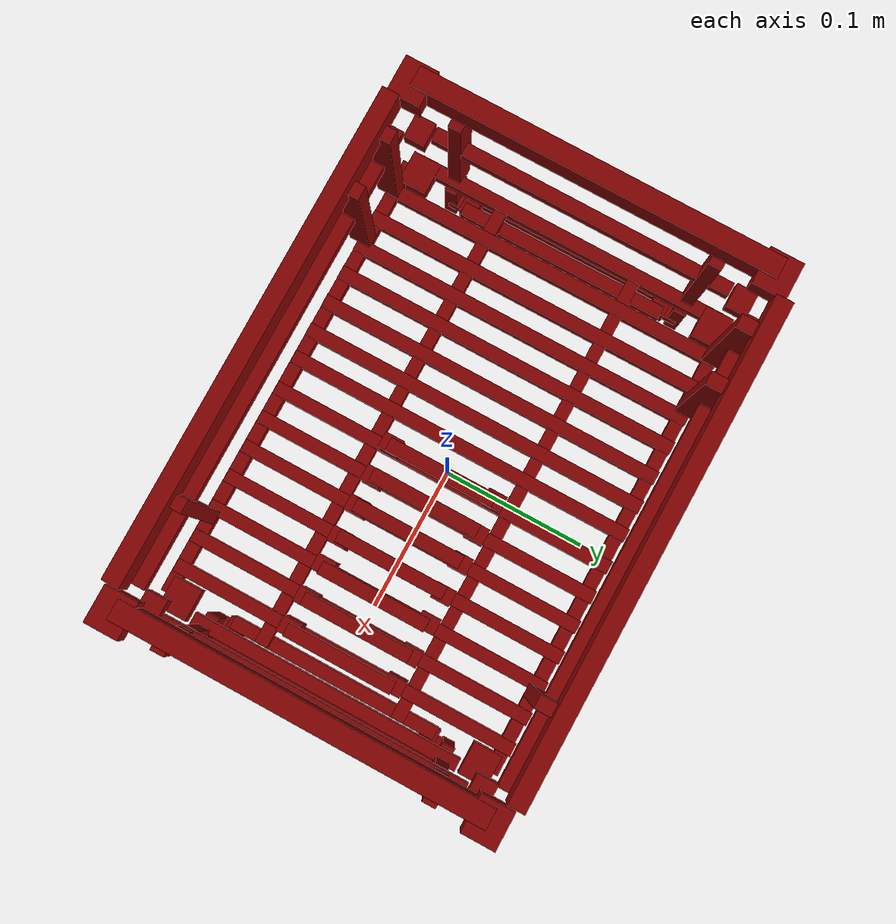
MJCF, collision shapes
<mujoco model="model">
  <compiler angle="radian"/>
  <asset>
    <mesh file="visuals/DishRack027.obj" name="vis"/>
    <texture file="visuals/T_BC001.png" name="material" type="2d"/>
    <material name="material" rgba="1 1 1 1.0" texture="material" shininess="0.5" specular="0.33333333333333337"/>
  </asset>
  <default>
    <default class="visual">
      <geom conaffinity="0" contype="0" group="1" type="mesh"/>
    </default>
    <default class="collision">
      <geom group="0" rgba="0.5 0 0 0.5"/>
    </default>
    <default class="region">
      <geom group="1" conaffinity="0" contype="0" rgba="0 1 0 0"/>
    </default>
  </default>
  <worldbody>
    <body>
      <body name="object">
        <geom mesh="vis" type="mesh" solimp="0.998 0.998 0.001" solref="0.001 1" density="100" friction="0.95 0.3 0.1" class="visual" material="material"/>
        <geom class="collision" type="box" pos="-0.13885708153247833 0.0 0.053375642746686935" size="0.004297505132853985 0.11860546469688416 0.004297505132853985" quat="1.0 0.0 0.0 0.0"/>
        <geom class="collision" type="box" pos="-0.11731316149234772 0.0 0.053375642746686935" size="0.004297505132853985 0.11860546469688416 0.004297505132853985" quat="1.0 0.0 0.0 0.0"/>
        <geom class="collision" type="box" pos="-0.09688358008861542 0.0 0.053375642746686935" size="0.004297505132853985 0.11860546469688416 0.004297505132853985" quat="1.0 0.0 0.0 0.0"/>
        <geom class="collision" type="box" pos="-0.07608254998922348 0.0 0.053375642746686935" size="0.004297505132853985 0.11860546469688416 0.004297505132853985" quat="1.0 0.0 0.0 0.0"/>
        <geom class="collision" type="box" pos="-0.054910074919462204 0.0 0.053375642746686935" size="0.004297505132853985 0.11860546469688416 0.004297505132853985" quat="1.0 0.0 0.0 0.0"/>
        <geom class="collision" type="box" pos="-0.034109048545360565 0.0 0.053375642746686935" size="0.004297505132853985 0.11860546469688416 0.004297505132853985" quat="1.0 0.0 0.0 0.0"/>
        <geom class="collision" type="box" pos="-0.014422360807657242 0.00037144694942981005 0.053375642746686935" size="0.004297505132853985 0.11860546469688416 0.004297505132853985" quat="1.0 0.0 0.0 0.0"/>
        <geom class="collision" type="box" pos="0.008235903456807137 0.00037144694942981005 0.053375642746686935" size="0.004297505132853985 0.11860546469688416 0.004297505132853985" quat="1.0 0.0 0.0 0.0"/>
        <geom class="collision" type="box" pos="0.029129793867468834 0.00037144694942981005 0.053375642746686935" size="0.004297505132853985 0.11860546469688416 0.004297505132853985" quat="1.0 0.0 0.0 0.0"/>
        <geom class="collision" type="box" pos="0.05002368241548538 0.00037144694942981005 0.053375642746686935" size="0.004297505132853985 0.11860546469688416 0.004297505132853985" quat="1.0 0.0 0.0 0.0"/>
        <geom class="collision" type="box" pos="0.07117552310228348 0.00037144694942981005 0.053375642746686935" size="0.004297505132853985 0.11860546469688416 0.004297505132853985" quat="1.0 0.0 0.0 0.0"/>
        <geom class="collision" type="box" pos="0.09258531033992767 0.00037144694942981005 0.053375642746686935" size="0.004297505132853985 0.11860546469688416 0.004297505132853985" quat="1.0 0.0 0.0 0.0"/>
        <geom class="collision" type="box" pos="0.11347919702529907 0.00037144694942981005 0.053375642746686935" size="0.004297505132853985 0.11860546469688416 0.004297505132853985" quat="1.0 0.0 0.0 0.0"/>
        <geom class="collision" type="box" pos="0.13463103771209717 0.00037144694942981005 0.053375642746686935" size="0.004297505132853985 0.11860546469688416 0.004297505132853985" quat="1.0 0.0 0.0 0.0"/>
        <geom class="collision" type="box" pos="-0.13885708153247833 0.11544574797153473 0.11156900972127914" size="0.004297505132853985 0.052834268659353256 0.006999239791184664" quat="0.7071067094802856 -0.7071068286895752 -1.5700929612083792e-16 -2.2148510003422914e-23"/>
        <geom class="collision" type="box" pos="-0.13885708153247833 -0.11678294837474823 0.11156900972127914" size="0.004297505132853985 0.052834268659353256 0.006999239791184664" quat="0.7071067094802856 -0.7071068286895752 -1.5700929612083792e-16 -2.2148510003422914e-23"/>
        <geom class="collision" type="box" pos="-0.10236229002475739 0.11544574797153473 0.11156900972127914" size="0.004297505132853985 0.052834268659353256 0.006999239791184664" quat="0.7071067094802856 -0.7071068286895752 -1.5700929612083792e-16 -2.2148510003422914e-23"/>
        <geom class="collision" type="box" pos="-0.10236229002475739 -0.11678294837474823 0.11156900972127914" size="0.004297505132853985 0.052834268659353256 0.006999239791184664" quat="0.7071067094802856 -0.7071068286895752 -1.5700929612083792e-16 -2.2148510003422914e-23"/>
        <geom class="collision" type="box" pos="0.09782211482524872 0.11544574797153473 0.11156900972127914" size="0.004297505132853985 0.052834268659353256 0.006999239791184664" quat="0.7071067094802856 -0.7071068286895752 -1.5700929612083792e-16 -2.2148510003422914e-23"/>
        <geom class="collision" type="box" pos="0.09782211482524872 -0.11678294837474823 0.11156900972127914" size="0.004297505132853985 0.052834268659353256 0.006999239791184664" quat="0.7071067094802856 -0.7071068286895752 -1.5700929612083792e-16 -2.2148510003422914e-23"/>
        <geom class="collision" type="box" pos="0.16670380532741547 -0.08373500406742096 0.10573248565196991" size="0.004297505132853985 0.05789348483085632 0.006999239791184664" quat="0.4999999701976776 -0.5 -0.5 0.5"/>
        <geom class="collision" type="box" pos="0.16670380532741547 0.08341012895107269 0.10573248565196991" size="0.004297505132853985 0.05789348483085632 0.006999239791184664" quat="0.4999999701976776 -0.5 -0.5 0.5"/>
        <geom class="collision" type="box" pos="0.1588323563337326 -0.08373500406742096 0.02394997887313366" size="0.004297505132853985 0.022483715787529945 0.006999239791184664" quat="0.4999999701976776 -0.5 -0.5 0.5"/>
        <geom class="collision" type="box" pos="0.1588323563337326 0.1090463176369667 0.1086461991071701" size="0.007006647065281868 0.005789464805275202 0.007775586098432541" quat="0.4999999701976776 -0.5 -0.5 0.5"/>
        <geom class="collision" type="box" pos="0.15864261984825134 0.00037144694942981005 0.05187529698014259" size="0.004297505132853985 0.09315112233161926 0.004297505132853985" quat="1.0 0.0 0.0 0.0"/>
        <geom class="collision" type="box" pos="0.1502464860677719 0.00037144694942981005 0.03347909078001976" size="0.004297505132853985 0.07290098071098328 0.004297505132853985" quat="1.0 0.0 0.0 0.0"/>
        <geom class="collision" type="box" pos="0.15616612136363983 -0.07467319816350937 0.01797749474644661" size="0.004297505132853985 0.010003487579524517 0.004297505132853985" quat="1.0 0.0 0.0 0.0"/>
        <geom class="collision" type="box" pos="0.15616612136363983 0.0751163512468338 0.01797749474644661" size="0.004297505132853985 0.010003487579524517 0.004297505132853985" quat="1.0 0.0 0.0 0.0"/>
        <geom class="collision" type="box" pos="0.15416088700294495 -0.06906310468912125 0.028359057381749153" size="0.0055412305518984795 0.00887641403824091 0.006999239791184664" quat="0.4999999701976776 -0.5 -0.5 0.5"/>
        <geom class="collision" type="box" pos="0.15416088700294495 0.07006744295358658 0.028359057381749153" size="0.0055412305518984795 0.00887641403824091 0.006999239791184664" quat="0.4999999701976776 -0.5 -0.5 0.5"/>
        <geom class="collision" type="box" pos="0.17117583751678467 0.00037144694942981005 0.0026037581264972687" size="0.004297505132853985 0.08713141828775406 0.004297505132853985" quat="1.0 0.0 0.0 0.0"/>
        <geom class="collision" type="box" pos="-0.1741514801979065 0.00037144694942981005 0.0026037581264972687" size="0.004297505132853985 0.08713141828775406 0.004297505132853985" quat="1.0 0.0 0.0 0.0"/>
        <geom class="collision" type="box" pos="-0.16325627267360687 0.0 0.053375642746686935" size="0.004297505132853985 0.10803632438182831 0.004670575726777315" quat="1.0 0.0 0.0 0.0"/>
        <geom class="collision" type="box" pos="-0.16940204799175262 -0.08373500406742096 0.10152634233236313" size="0.004297505132853985 0.052834268659353256 0.006999239791184664" quat="0.4999999701976776 -0.5 -0.5 0.5"/>
        <geom class="collision" type="box" pos="-0.16940204799175262 0.0834101215004921 0.10152634233236313" size="0.004297505132853985 0.052834268659353256 0.006999239791184664" quat="0.4999999701976776 -0.5 -0.5 0.5"/>
        <geom class="collision" type="box" pos="-0.1648411601781845 -0.08373500406742096 0.02394997887313366" size="0.004297505132853985 0.022483715787529945 0.006999239791184664" quat="0.4999999701976776 -0.5 -0.5 0.5"/>
        <geom class="collision" type="box" pos="-0.1648411601781845 0.08341012895107269 0.02394997887313366" size="0.004297505132853985 0.022483715787529945 0.006999239791184664" quat="0.4999999701976776 -0.5 -0.5 0.5"/>
        <geom class="collision" type="box" pos="-0.15468205511569977 0.00037144694942981005 0.03347909078001976" size="0.004297505132853985 0.07290098071098328 0.004297505132853985" quat="1.0 0.0 0.0 0.0"/>
        <geom class="collision" type="box" pos="-0.16066893935203552 -0.06906310468912125 0.028359057381749153" size="0.0055412305518984795 0.00887641403824091 0.006999239791184664" quat="0.4999999701976776 -0.5 -0.5 0.5"/>
        <geom class="collision" type="box" pos="-0.16066893935203552 0.07006744295358658 0.028359057381749153" size="0.0055412305518984795 0.00887641403824091 0.006999239791184664" quat="0.4999999701976776 -0.5 -0.5 0.5"/>
        <geom class="collision" type="box" pos="-0.16171805560588837 -0.07467319816350937 0.01797749474644661" size="0.004297505132853985 0.010003487579524517 0.004297505132853985" quat="1.0 0.0 0.0 0.0"/>
        <geom class="collision" type="box" pos="-0.16171805560588837 0.0751163512468338 0.01797749474644661" size="0.004297505132853985 0.010003487579524517 0.004297505132853985" quat="1.0 0.0 0.0 0.0"/>
        <geom class="collision" type="box" pos="0.008235903456807137 0.00037144694942981005 0.08496882021427155" size="0.004297505132853985 0.03635859489440918 0.004297505132853985" quat="1.0 0.0 0.0 0.0"/>
        <geom class="collision" type="box" pos="0.028894778341054916 0.00037144694942981005 0.08496882021427155" size="0.004297505132853985 0.03635859489440918 0.004297505132853985" quat="1.0 0.0 0.0 0.0"/>
        <geom class="collision" type="box" pos="0.049939800053834915 0.00037144694942981005 0.08496882021427155" size="0.004297505132853985 0.03635859489440918 0.004297505132853985" quat="1.0 0.0 0.0 0.0"/>
        <geom class="collision" type="box" pos="0.07102343440055847 0.00037144694942981005 0.08496882021427155" size="0.004297505132853985 0.03635859489440918 0.004297505132853985" quat="1.0 0.0 0.0 0.0"/>
        <geom class="collision" type="box" pos="0.09280213713645935 0.00037144694942981005 0.08496882021427155" size="0.004297505132853985 0.03635859489440918 0.004297505132853985" quat="1.0 0.0 0.0 0.0"/>
        <geom class="collision" type="box" pos="0.11365408450365067 0.00037144694942981005 0.08496882021427155" size="0.004297505132853985 0.03635859489440918 0.004297505132853985" quat="1.0 0.0 0.0 0.0"/>
        <geom class="collision" type="box" pos="0.13450603187084198 0.00037144694942981005 0.08496882021427155" size="0.004297505132853985 0.03635859489440918 0.004297505132853985" quat="1.0 0.0 0.0 0.0"/>
        <geom class="collision" type="box" pos="0.13323815166950226 -0.03501863777637482 0.06931871175765991" size="0.0063743917271494865 0.013202187605202198 0.0052362410351634026" quat="0.4999999701976776 -0.5 -0.5 0.5"/>
        <geom class="collision" type="box" pos="0.13323815166950226 0.0364961177110672 0.06931871175765991" size="0.0063743917271494865 0.013202187605202198 0.0052362410351634026" quat="0.4999999701976776 -0.5 -0.5 0.5"/>
        <geom class="collision" type="box" pos="0.1130852922797203 -0.03501863777637482 0.06931871175765991" size="0.0063743917271494865 0.013202187605202198 0.0052362410351634026" quat="0.4999999701976776 -0.5 -0.5 0.5"/>
        <geom class="collision" type="box" pos="0.1130852922797203 0.0364961177110672 0.06931871175765991" size="0.0063743917271494865 0.013202187605202198 0.0052362410351634026" quat="0.4999999701976776 -0.5 -0.5 0.5"/>
        <geom class="collision" type="box" pos="0.0910942554473877 -0.03501863777637482 0.06931871175765991" size="0.0063743917271494865 0.013202187605202198 0.0052362410351634026" quat="0.4999999701976776 -0.5 -0.5 0.5"/>
        <geom class="collision" type="box" pos="0.0910942554473877 0.0364961177110672 0.06931871175765991" size="0.0063743917271494865 0.013202187605202198 0.0052362410351634026" quat="0.4999999701976776 -0.5 -0.5 0.5"/>
        <geom class="collision" type="box" pos="0.07166337221860886 -0.03501863777637482 0.06931871175765991" size="0.0063743917271494865 0.013202187605202198 0.0052362410351634026" quat="0.4999999701976776 -0.5 -0.5 0.5"/>
        <geom class="collision" type="box" pos="0.07166337221860886 0.0364961177110672 0.06931871175765991" size="0.0063743917271494865 0.013202187605202198 0.0052362410351634026" quat="0.4999999701976776 -0.5 -0.5 0.5"/>
        <geom class="collision" type="box" pos="0.05005165934562683 -0.03501863777637482 0.06931871175765991" size="0.0063743917271494865 0.013202187605202198 0.0052362410351634026" quat="0.4999999701976776 -0.5 -0.5 0.5"/>
        <geom class="collision" type="box" pos="0.05005165934562683 0.0364961177110672 0.06931871175765991" size="0.0063743917271494865 0.013202187605202198 0.0052362410351634026" quat="0.4999999701976776 -0.5 -0.5 0.5"/>
        <geom class="collision" type="box" pos="0.029598619788885117 -0.03501863777637482 0.06931871175765991" size="0.0063743917271494865 0.013202187605202198 0.0052362410351634026" quat="0.4999999701976776 -0.5 -0.5 0.5"/>
        <geom class="collision" type="box" pos="0.029598619788885117 0.0364961177110672 0.06931871175765991" size="0.0063743917271494865 0.013202187605202198 0.0052362410351634026" quat="0.4999999701976776 -0.5 -0.5 0.5"/>
        <geom class="collision" type="box" pos="0.007174136117100716 -0.03501863777637482 0.06931871175765991" size="0.0063743917271494865 0.013202187605202198 0.0052362410351634026" quat="0.4999999701976776 -0.5 -0.5 0.5"/>
        <geom class="collision" type="box" pos="0.007174136117100716 0.0364961177110672 0.06931871175765991" size="0.0063743917271494865 0.013202187605202198 0.0052362410351634026" quat="0.4999999701976776 -0.5 -0.5 0.5"/>
        <geom class="collision" type="box" pos="-0.0032808128744363785 -0.1207895502448082 0.1090840995311737" size="0.004297505132853985 0.1559232622385025 0.004297505132853985" quat="0.7071067094802856 0.0 0.0 0.7071068286895752"/>
        <geom class="collision" type="box" pos="-0.0032808128744363785 0.11975153535604477 0.1090840995311737" size="0.004297505132853985 0.1559232622385025 0.004297505132853985" quat="0.7071067094802856 0.0 0.0 0.7071068286895752"/>
        <geom class="collision" type="box" pos="0.1632874757051468 0.00037144694942981005 0.1094035655260086" size="0.004297505132853985 0.10025054216384888 0.004297505132853985" quat="1.0 0.0 0.0 0.0"/>
        <geom class="collision" type="box" pos="-0.16737671196460724 0.00037144694942981005 0.1094035655260086" size="0.004297505132853985 0.10025054216384888 0.004297505132853985" quat="1.0 0.0 0.0 0.0"/>
        <geom class="collision" type="box" pos="-0.0032808128744363785 -0.12227616459131241 0.16374416649341583" size="0.005431497935205698 0.1559232622385025 0.010554633103311062" quat="0.7071067094802856 0.0 0.0 0.7071068286895752"/>
        <geom class="collision" type="box" pos="-0.0032808128744363785 0.12445200234651566 0.16374416649341583" size="0.005431497935205698 0.1559232622385025 0.010554633103311062" quat="0.7071067094802856 0.0 0.0 0.7071068286895752"/>
        <geom class="collision" type="box" pos="0.1632874757051468 0.00037144694942981005 0.1633470058441162" size="0.006349395494908094 0.11505339294672012 0.010305773466825485" quat="1.0 0.0 0.0 0.0"/>
        <geom class="collision" type="box" pos="-0.17318643629550934 0.00037144694942981005 0.16497749090194702" size="0.006349395494908094 0.11505339294672012 0.009569981135427952" quat="1.0 0.0 0.0 0.0"/>
        <geom class="collision" type="box" pos="0.1588323563337326 -0.10816323012113571 0.1086461991071701" size="0.007006647065281868 0.005789464805275202 0.007775586098432541" quat="0.4999999701976776 -0.5 -0.5 0.5"/>
        <geom class="collision" type="box" pos="0.15160636603832245 -0.10518757253885269 0.05260641500353813" size="0.00965080875903368 0.005789464805275202 0.010709929279983044" quat="0.4999999701976776 -0.5 -0.5 0.5"/>
        <geom class="collision" type="box" pos="0.15160636603832245 0.10533339530229568 0.05260641500353813" size="0.00965080875903368 0.005789464805275202 0.010709929279983044" quat="0.4999999701976776 -0.5 -0.5 0.5"/>
        <geom class="collision" type="box" pos="-0.1565835028886795 -0.10518757253885269 0.05260641500353813" size="0.00965080875903368 0.005789464805275202 0.010709929279983044" quat="0.4999999701976776 -0.5 -0.5 0.5"/>
        <geom class="collision" type="box" pos="-0.1565835028886795 0.10533339530229568 0.05260641500353813" size="0.00965080875903368 0.005789464805275202 0.010709929279983044" quat="0.4999999701976776 -0.5 -0.5 0.5"/>
        <geom class="collision" type="box" pos="-0.16471624374389648 0.1090463176369667 0.1086461991071701" size="0.007006647065281868 0.005789464805275202 0.007775586098432541" quat="0.4999999701976776 -0.5 -0.5 0.5"/>
        <geom class="collision" type="box" pos="-0.16471624374389648 -0.10816323012113571 0.1086461991071701" size="0.007006647065281868 0.005789464805275202 0.007775586098432541" quat="0.4999999701976776 -0.5 -0.5 0.5"/>
        <geom class="collision" type="box" pos="0.16538044810295105 -0.11459648609161377 0.16426359117031097" size="0.01051346492022276 0.008160551078617573 0.01166725717484951" quat="0.4999999701976776 -0.5 -0.5 0.5"/>
        <geom class="collision" type="box" pos="0.16538044810295105 0.11474230885505676 0.16426359117031097" size="0.01051346492022276 0.008160551078617573 0.01166725717484951" quat="0.4999999701976776 -0.5 -0.5 0.5"/>
        <geom class="collision" type="box" pos="-0.1703575849533081 -0.11459648609161377 0.16426359117031097" size="0.01051346492022276 0.008160551078617573 0.01166725717484951" quat="0.4999999701976776 -0.5 -0.5 0.5"/>
        <geom class="collision" type="box" pos="-0.1703575849533081 0.11474230885505676 0.16426359117031097" size="0.01051346492022276 0.008160551078617573 0.01166725717484951" quat="0.4999999701976776 -0.5 -0.5 0.5"/>
        <geom class="collision" type="box" pos="-0.0032808128744363785 -0.1144319400191307 0.051729120314121246" size="0.004297505132853985 0.1559232622385025 0.004297505132853985" quat="0.7071067094802856 0.0 0.0 0.7071068286895752"/>
        <geom class="collision" type="box" pos="-0.0032808128744363785 -0.047908179461956024 0.051729120314121246" size="0.004297505132853985 0.1559232622385025 0.004297505132853985" quat="0.7071067094802856 0.0 0.0 0.7071068286895752"/>
        <geom class="collision" type="box" pos="-0.0032808128744363785 0.04790778458118439 0.051729120314121246" size="0.004297505132853985 0.1559232622385025 0.004297505132853985" quat="0.7071067094802856 0.0 0.0 0.7071068286895752"/>
        <geom class="collision" type="box" pos="-0.0032808128744363785 0.11367691308259964 0.051729120314121246" size="0.004297505132853985 0.1559232622385025 0.004297505132853985" quat="0.7071067094802856 0.0 0.0 0.7071068286895752"/>
        <geom class="collision" type="box" pos="0.1588323563337326 0.08387835323810577 0.02394997887313366" size="0.004297505132853985 0.022483715787529945 0.006999239791184664" quat="0.4999999701976776 -0.5 -0.5 0.5"/>
        <geom class="region" name="reg_main" type="box" pos="-0.002385977655649185 0.00013606250286102295 0.08630144596099854" size="0.17597761750221252 0.12685570120811462 0.08662961423397064"/>
      </body>
    </body>
  </worldbody>
  <actuator/>
</mujoco>
